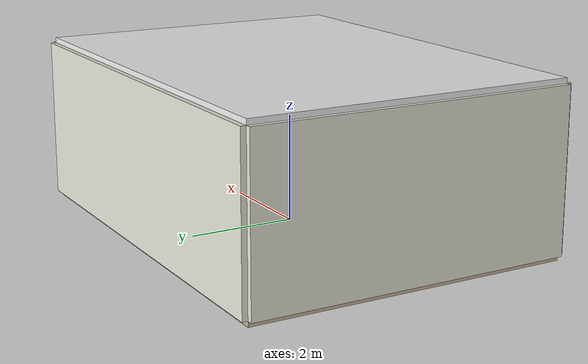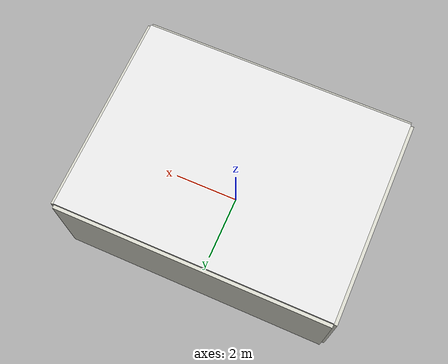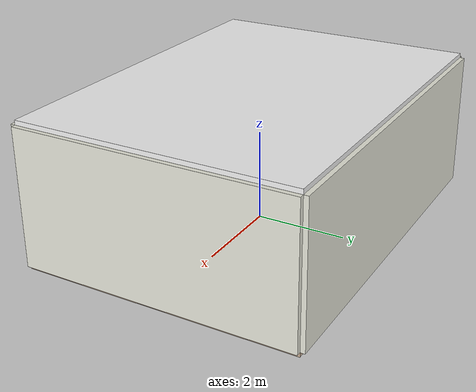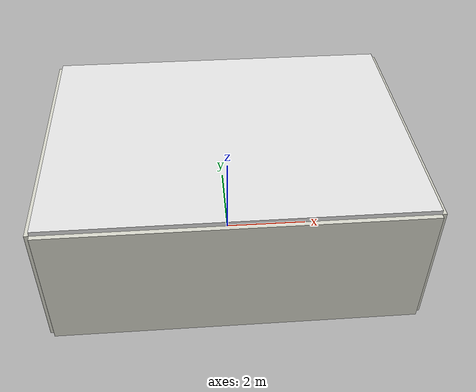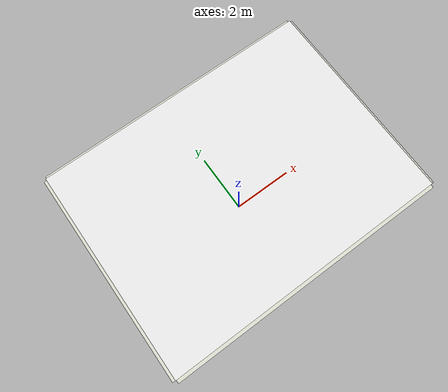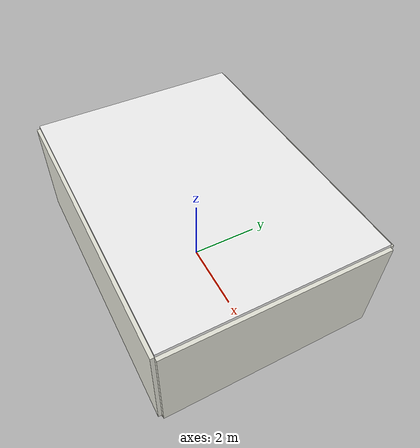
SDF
<sdf version="1.6">
 <world name="home_room">
  <physics type="ode">
   <max_step_size>0.001</max_step_size>
   <real_time_factor>1.0</real_time_factor>
   <real_time_update_rate>1000</real_time_update_rate>
  </physics>
  <light type="directional" name="sun">
   <pose>0 0 10 0 0 0</pose>
   <diffuse>1.0 1.0 0.95 1</diffuse>
   <specular>0.3 0.3 0.3 1</specular>
   <direction>-0.3 0.2 -0.9</direction>
  </light>
  <light type="point" name="ceiling_light_1">
   <pose>2 2 2.8 0 0 0</pose>
   <diffuse>0.8 0.8 0.7 1</diffuse>
   <specular>0.2 0.2 0.2 1</specular>
   <attenuation>
    <range>10</range>
    <constant>0.5</constant>
    <linear>0.01</linear>
    <quadratic>0.001</quadratic>
   </attenuation>
   <cast_shadows>false</cast_shadows>
  </light>
  <light type="point" name="ceiling_light_2">
   <pose>-2 -2 2.8 0 0 0</pose>
   <diffuse>0.8 0.8 0.7 1</diffuse>
   <specular>0.2 0.2 0.2 1</specular>
   <attenuation>
    <range>10</range>
    <constant>0.5</constant>
    <linear>0.01</linear>
    <quadratic>0.001</quadratic>
   </attenuation>
   <cast_shadows>false</cast_shadows>
  </light>
  <model name="floor">
   <static>true</static>
   <link name="link">
    <collision name="collision"><geometry><box><size>8 6 0.1</size></box></geometry></collision>
    <visual name="visual">
     <geometry><box><size>8 6 0.1</size></box></geometry>
     <material>
      <ambient>0.8 0.7 0.6 1</ambient>
      <diffuse>0.8 0.7 0.6 1</diffuse>
      <specular>0.1 0.1 0.1 1</specular>
     </material>
    </visual>
   </link>
   <pose>0 0 -0.05 0 0 0</pose>
  </model>
  <model name="ceiling">
   <static>true</static>
   <link name="link">
    <visual name="visual">
     <geometry><box><size>8 6 0.1</size></box></geometry>
     <material>
      <ambient>0.95 0.95 0.95 1</ambient>
      <diffuse>0.95 0.95 0.95 1</diffuse>
      <specular>0.1 0.1 0.1 1</specular>
     </material>
    </visual>
   </link>
   <pose>0 0 3.05 0 0 0</pose>
  </model>
  <model name="wall_north">
   <static>true</static>
   <link name="link">
    <collision name="collision"><geometry><box><size>8 0.2 3</size></box></geometry></collision>
    <visual name="visual">
     <geometry><box><size>8 0.2 3</size></box></geometry>
     <material>
      <ambient>0.9 0.9 0.85 1</ambient>
      <diffuse>0.9 0.9 0.85 1</diffuse>
      <specular>0.1 0.1 0.1 1</specular>
     </material>
    </visual>
   </link>
   <pose>0 3 1.5 0 0 0</pose>
  </model>
  <model name="wall_south">
   <static>true</static>
   <link name="link">
    <collision name="collision"><geometry><box><size>8 0.2 3</size></box></geometry></collision>
    <visual name="visual">
     <geometry><box><size>8 0.2 3</size></box></geometry>
     <material>
      <ambient>0.9 0.9 0.85 1</ambient>
      <diffuse>0.9 0.9 0.85 1</diffuse>
      <specular>0.1 0.1 0.1 1</specular>
     </material>
    </visual>
   </link>
   <pose>0 -3 1.5 0 0 0</pose>
  </model>
  <model name="wall_east">
   <static>true</static>
   <link name="link">
    <collision name="collision"><geometry><box><size>0.2 6 3</size></box></geometry></collision>
    <visual name="visual">
     <geometry><box><size>0.2 6 3</size></box></geometry>
     <material>
      <ambient>0.9 0.9 0.85 1</ambient>
      <diffuse>0.9 0.9 0.85 1</diffuse>
      <specular>0.1 0.1 0.1 1</specular>
     </material>
    </visual>
   </link>
   <pose>4 0 1.5 0 0 0</pose>
  </model>
  <model name="wall_west">
   <static>true</static>
   <link name="link">
    <collision name="collision"><geometry><box><size>0.2 6 3</size></box></geometry></collision>
    <visual name="visual">
     <geometry><box><size>0.2 6 3</size></box></geometry>
     <material>
      <ambient>0.9 0.9 0.85 1</ambient>
      <diffuse>0.9 0.9 0.85 1</diffuse>
      <specular>0.1 0.1 0.1 1</specular>
     </material>
    </visual>
   </link>
   <pose>-4 0 1.5 0 0 0</pose>
  </model>
  <model name="coffee_table">
   <static>true</static>
   <link name="link">
    <collision name="collision"><geometry><box><size>1.2 0.6 0.4</size></box></geometry></collision>
    <visual name="visual">
     <geometry><box><size>1.2 0.6 0.4</size></box></geometry>
     <material>
      <ambient>0.4 0.3 0.2 1</ambient>
      <diffuse>0.5 0.4 0.3 1</diffuse>
      <specular>0.3 0.3 0.3 1</specular>
     </material>
    </visual>
   </link>
   <pose>0 0 0.2 0 0 0</pose>
  </model>
  <model name="couch">
   <static>true</static>
   <link name="seat">
    <collision name="collision"><geometry><box><size>2.0 0.8 0.5</size></box></geometry></collision>
    <visual name="visual">
     <geometry><box><size>2.0 0.8 0.5</size></box></geometry>
     <material>
      <ambient>0.3 0.35 0.5 1</ambient>
      <diffuse>0.4 0.45 0.6 1</diffuse>
      <specular>0.1 0.1 0.1 1</specular>
     </material>
    </visual>
    <pose>0 0 0.25 0 0 0</pose>
   </link>
   <link name="backrest">
    <visual name="visual">
     <geometry><box><size>2.0 0.2 0.6</size></box></geometry>
     <material>
      <ambient>0.3 0.35 0.5 1</ambient>
      <diffuse>0.4 0.45 0.6 1</diffuse>
      <specular>0.1 0.1 0.1 1</specular>
     </material>
    </visual>
    <pose>0 -0.3 0.55 0 0 0</pose>
   </link>
   <pose>0 -2.3 0 0 0 0</pose>
  </model>
  <model name="chair_1">
   <static>true</static>
   <link name="seat">
    <collision name="collision"><geometry><box><size>0.5 0.5 0.05</size></box></geometry></collision>
    <visual name="visual">
     <geometry><box><size>0.5 0.5 0.05</size></box></geometry>
     <material>
      <ambient>0.6 0.4 0.3 1</ambient>
      <diffuse>0.7 0.5 0.4 1</diffuse>
      <specular>0.2 0.2 0.2 1</specular>
     </material>
    </visual>
    <pose>0 0 0.45 0 0 0</pose>
   </link>
   <link name="backrest">
    <visual name="visual">
     <geometry><box><size>0.5 0.1 0.5</size></box></geometry>
     <material>
      <ambient>0.6 0.4 0.3 1</ambient>
      <diffuse>0.7 0.5 0.4 1</diffuse>
      <specular>0.2 0.2 0.2 1</specular>
     </material>
    </visual>
    <pose>0 -0.2 0.7 0 0 0</pose>
   </link>
   <pose>1.2 0.8 0 0 0 0</pose>
  </model>
  <model name="chair_2">
   <static>true</static>
   <link name="seat">
    <collision name="collision"><geometry><box><size>0.5 0.5 0.05</size></box></geometry></collision>
    <visual name="visual">
     <geometry><box><size>0.5 0.5 0.05</size></box></geometry>
     <material>
      <ambient>0.6 0.4 0.3 1</ambient>
      <diffuse>0.7 0.5 0.4 1</diffuse>
      <specular>0.2 0.2 0.2 1</specular>
     </material>
    </visual>
    <pose>0 0 0.45 0 0 0</pose>
   </link>
   <link name="backrest">
    <visual name="visual">
     <geometry><box><size>0.5 0.1 0.5</size></box></geometry>
     <material>
      <ambient>0.6 0.4 0.3 1</ambient>
      <diffuse>0.7 0.5 0.4 1</diffuse>
      <specular>0.2 0.2 0.2 1</specular>
     </material>
    </visual>
    <pose>0 0.2 0.7 0 0 0</pose>
   </link>
   <pose>-1.2 -0.8 0 0 0 3.14159</pose>
  </model>
  <model name="bookshelf">
   <static>true</static>
   <link name="link">
    <collision name="collision"><geometry><box><size>0.3 1.5 2.0</size></box></geometry></collision>
    <visual name="visual">
     <geometry><box><size>0.3 1.5 2.0</size></box></geometry>
     <material>
      <ambient>0.35 0.25 0.15 1</ambient>
      <diffuse>0.45 0.35 0.25 1</diffuse>
      <specular>0.2 0.2 0.2 1</specular>
     </material>
    </visual>
   </link>
   <pose>3.5 1.5 1.0 0 0 0</pose>
  </model>
  <model name="side_table">
   <static>true</static>
   <link name="link">
    <collision name="collision">
     <geometry><cylinder><radius>0.25</radius><length>0.6</length></cylinder></geometry>
    </collision>
    <visual name="visual">
     <geometry><cylinder><radius>0.25</radius><length>0.6</length></cylinder></geometry>
     <material>
      <ambient>0.4 0.3 0.2 1</ambient>
      <diffuse>0.5 0.4 0.3 1</diffuse>
      <specular>0.3 0.3 0.3 1</specular>
     </material>
    </visual>
   </link>
   <pose>2.5 -2.0 0.3 0 0 0</pose>
  </model>
 </world>
</sdf>
